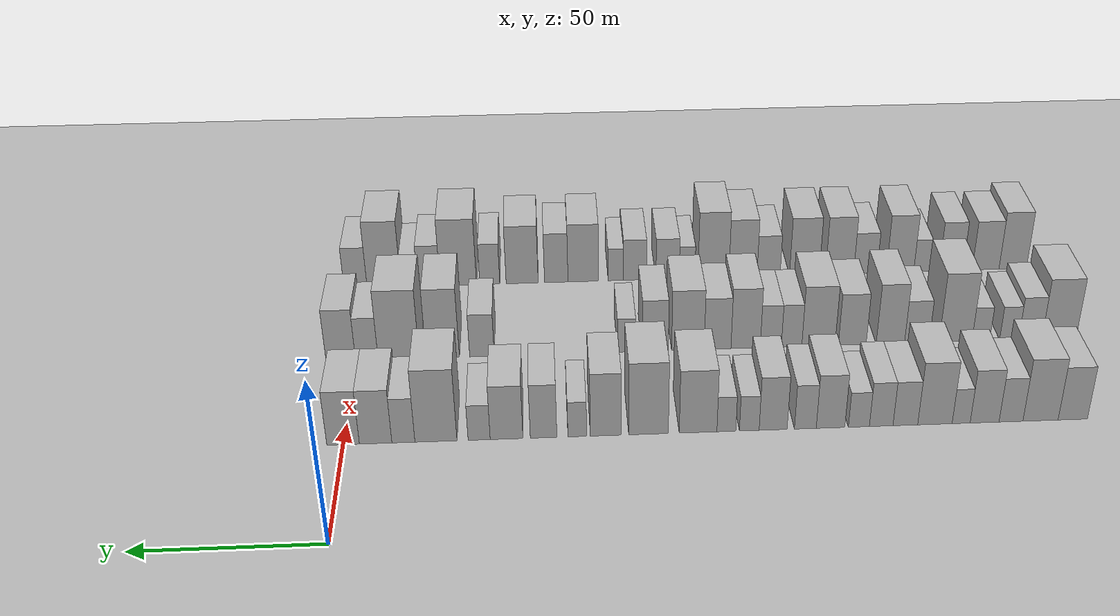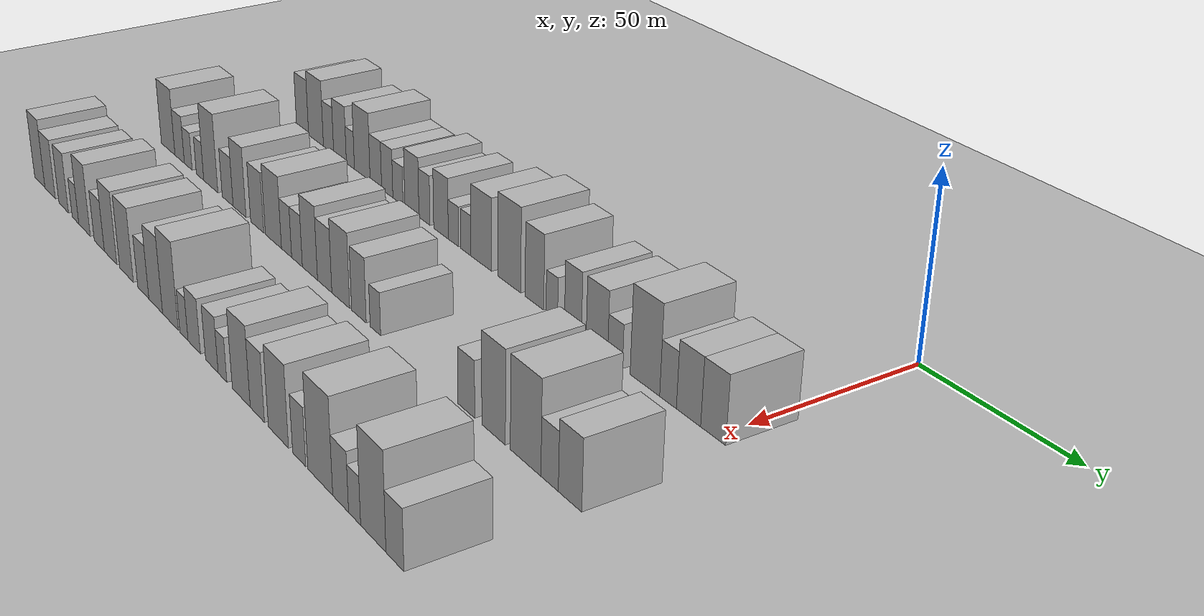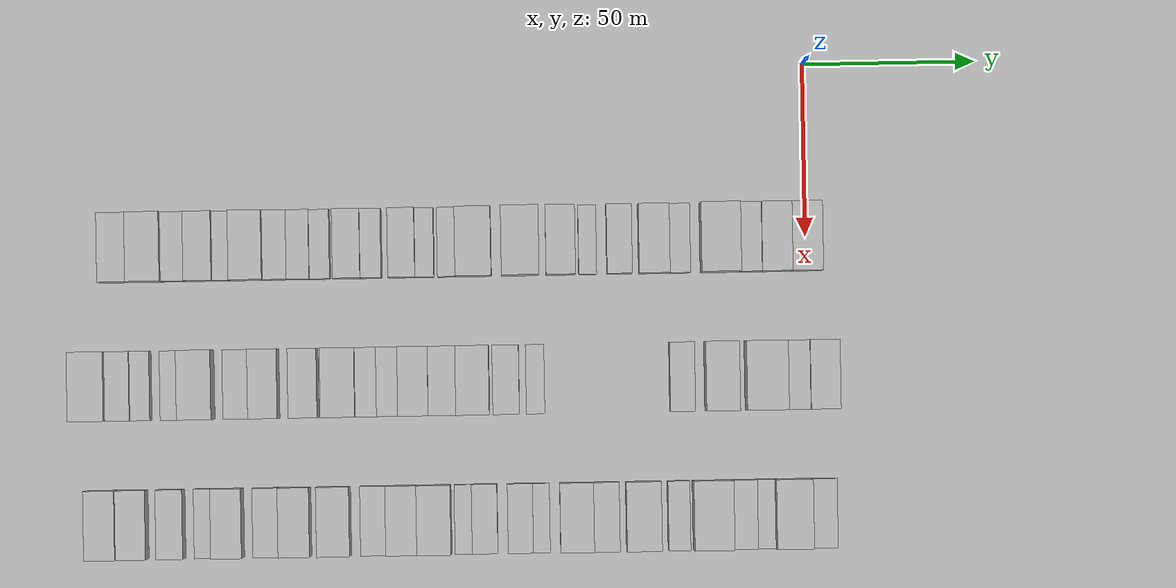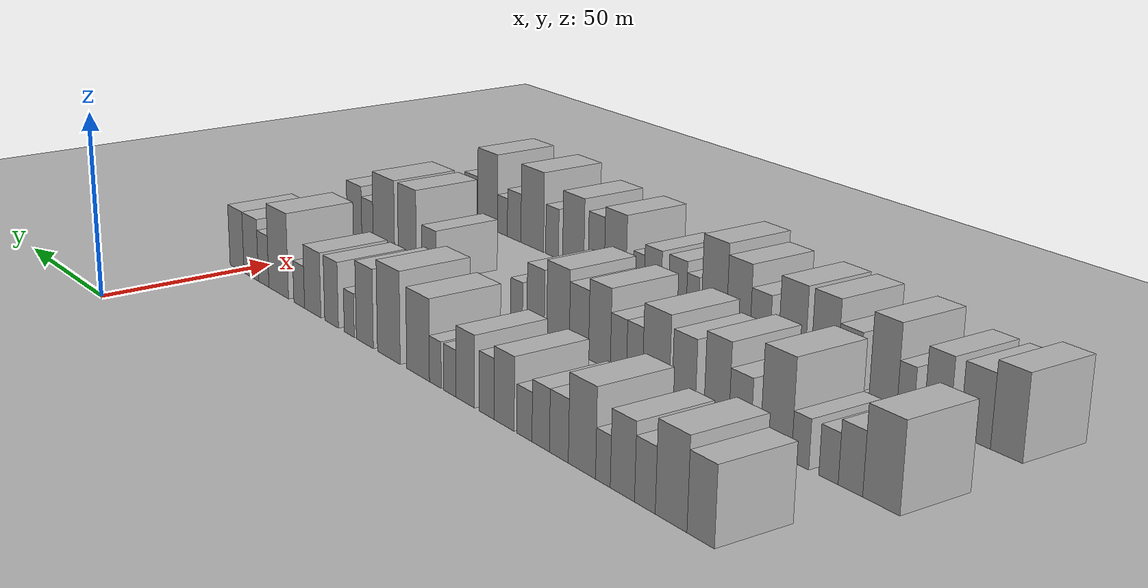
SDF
<sdf version="1.6">
 <world name="default">
  <include><name>ground_plane_1</name><uri>model://HANNAS_ground_plane</uri></include>
  <include>
   <name>ground_plane_2</name>
   <uri>model://HANNAS_ground_plane</uri>
   <pose>100 0 0  0 0 0</pose>
  </include>
  <model name="building_49">
   <static>1</static>
   <pose>50.0000 -200.3005 0 0.000000 0.000000 0.000000</pose>
   <link name="link">
    <pose>0 0 9.00 0 0 0</pose>
    <collision name="collision"><geometry><box><size>20.0000 8.2305 18.0000</size></box></geometry></collision>
    <visual name="visual">
     <cast_shadows>0</cast_shadows>
     <geometry><box><size>20.0000 8.2305 18.0000</size></box></geometry>
     <material>
      <script>
       <uri>model://HANNAS_wall/materials/scripts</uri>
       <uri>model://HANNAS_wall/materials/textures</uri>
       <name>vrc/HANNAS_wall</name>
      </script>
     </material>
    </visual>
   </link>
  </model>
  <model name="building_50">
   <static>1</static>
   <pose>50.0000 -191.2537 0 0.000000 0.000000 0.000000</pose>
   <link name="link">
    <pose>0 0 10.50 0 0 0</pose>
    <collision name="collision"><geometry><box><size>20.0000 9.8631 21.0000</size></box></geometry></collision>
    <visual name="visual">
     <cast_shadows>0</cast_shadows>
     <geometry><box><size>20.0000 9.8631 21.0000</size></box></geometry>
     <material>
      <script>
       <uri>model://HANNAS_wall/materials/scripts</uri>
       <uri>model://HANNAS_wall/materials/textures</uri>
       <name>vrc/HANNAS_wall</name>
      </script>
     </material>
    </visual>
   </link>
  </model>
  <model name="building_51">
   <static>1</static>
   <pose>50.0000 -182.9809 0 0.000000 0.000000 0.000000</pose>
   <link name="link">
    <pose>0 0 7.50 0 0 0</pose>
    <collision name="collision"><geometry><box><size>20.0000 6.6825 15.0000</size></box></geometry></collision>
    <visual name="visual">
     <cast_shadows>0</cast_shadows>
     <geometry><box><size>20.0000 6.6825 15.0000</size></box></geometry>
     <material>
      <script>
       <uri>model://HANNAS_wall/materials/scripts</uri>
       <uri>model://HANNAS_wall/materials/textures</uri>
       <name>vrc/HANNAS_wall</name>
      </script>
     </material>
    </visual>
   </link>
  </model>
  <model name="building_52">
   <static>1</static>
   <pose>50.0000 -175.6053 0 0.000000 0.000000 0.000000</pose>
   <link name="link">
    <pose>0 0 9.00 0 0 0</pose>
    <collision name="collision"><geometry><box><size>20.0000 8.0686 18.0000</size></box></geometry></collision>
    <visual name="visual">
     <cast_shadows>0</cast_shadows>
     <geometry><box><size>20.0000 8.0686 18.0000</size></box></geometry>
     <material>
      <script>
       <uri>model://HANNAS_wall/materials/scripts</uri>
       <uri>model://HANNAS_wall/materials/textures</uri>
       <name>vrc/HANNAS_wall</name>
      </script>
     </material>
    </visual>
   </link>
  </model>
  <model name="building_53">
   <static>1</static>
   <pose>50.0000 -169.0578 0 0.000000 0.000000 0.000000</pose>
   <link name="link">
    <pose>0 0 6.00 0 0 0</pose>
    <collision name="collision"><geometry><box><size>20.0000 5.0264 12.0000</size></box></geometry></collision>
    <visual name="visual">
     <cast_shadows>0</cast_shadows>
     <geometry><box><size>20.0000 5.0264 12.0000</size></box></geometry>
     <material>
      <script>
       <uri>model://HANNAS_wall/materials/scripts</uri>
       <uri>model://HANNAS_wall/materials/textures</uri>
       <name>vrc/HANNAS_wall</name>
      </script>
     </material>
    </visual>
   </link>
  </model>
  <model name="building_54">
   <static>1</static>
   <pose>50.0000 -161.7525 0 0.000000 0.000000 0.000000</pose>
   <link name="link">
    <pose>0 0 10.50 0 0 0</pose>
    <collision name="collision"><geometry><box><size>20.0000 9.5842 21.0000</size></box></geometry></collision>
    <visual name="visual">
     <cast_shadows>0</cast_shadows>
     <geometry><box><size>20.0000 9.5842 21.0000</size></box></geometry>
     <material>
      <script>
       <uri>model://HANNAS_wall/materials/scripts</uri>
       <uri>model://HANNAS_wall/materials/textures</uri>
       <name>vrc/HANNAS_wall</name>
      </script>
     </material>
    </visual>
   </link>
  </model>
  <model name="building_55">
   <static>1</static>
   <pose>50.0000 -153.5226 0 0.000000 0.000000 0.000000</pose>
   <link name="link">
    <pose>0 0 7.50 0 0 0</pose>
    <collision name="collision"><geometry><box><size>20.0000 6.8758 15.0000</size></box></geometry></collision>
    <visual name="visual">
     <cast_shadows>0</cast_shadows>
     <geometry><box><size>20.0000 6.8758 15.0000</size></box></geometry>
     <material>
      <script>
       <uri>model://HANNAS_wall/materials/scripts</uri>
       <uri>model://HANNAS_wall/materials/textures</uri>
       <name>vrc/HANNAS_wall</name>
      </script>
     </material>
    </visual>
   </link>
  </model>
  <model name="building_56">
   <static>1</static>
   <pose>50.0000 -146.8123 0 0.000000 0.000000 0.000000</pose>
   <link name="link">
    <pose>0 0 7.50 0 0 0</pose>
    <collision name="collision"><geometry><box><size>20.0000 6.5448 15.0000</size></box></geometry></collision>
    <visual name="visual">
     <cast_shadows>0</cast_shadows>
     <geometry><box><size>20.0000 6.5448 15.0000</size></box></geometry>
     <material>
      <script>
       <uri>model://HANNAS_wall/materials/scripts</uri>
       <uri>model://HANNAS_wall/materials/textures</uri>
       <name>vrc/HANNAS_wall</name>
      </script>
     </material>
    </visual>
   </link>
  </model>
  <model name="building_57">
   <static>1</static>
   <pose>50.0000 -140.6268 0 0.000000 0.000000 0.000000</pose>
   <link name="link">
    <pose>0 0 6.00 0 0 0</pose>
    <collision name="collision"><geometry><box><size>20.0000 5.8261 12.0000</size></box></geometry></collision>
    <visual name="visual">
     <cast_shadows>0</cast_shadows>
     <geometry><box><size>20.0000 5.8261 12.0000</size></box></geometry>
     <material>
      <script>
       <uri>model://HANNAS_wall/materials/scripts</uri>
       <uri>model://HANNAS_wall/materials/textures</uri>
       <name>vrc/HANNAS_wall</name>
      </script>
     </material>
    </visual>
   </link>
  </model>
  <model name="building_58">
   <static>1</static>
   <pose>50.0000 -132.7668 0 0.000000 0.000000 0.000000</pose>
   <link name="link">
    <pose>0 0 9.00 0 0 0</pose>
    <collision name="collision"><geometry><box><size>20.0000 7.8940 18.0000</size></box></geometry></collision>
    <visual name="visual">
     <cast_shadows>0</cast_shadows>
     <geometry><box><size>20.0000 7.8940 18.0000</size></box></geometry>
     <material>
      <script>
       <uri>model://HANNAS_wall/materials/scripts</uri>
       <uri>model://HANNAS_wall/materials/textures</uri>
       <name>vrc/HANNAS_wall</name>
      </script>
     </material>
    </visual>
   </link>
  </model>
  <model name="building_59">
   <static>1</static>
   <pose>50.0000 -125.8042 0 0.000000 0.000000 0.000000</pose>
   <link name="link">
    <pose>0 0 7.50 0 0 0</pose>
    <collision name="collision"><geometry><box><size>20.0000 6.0313 15.0000</size></box></geometry></collision>
    <visual name="visual">
     <cast_shadows>0</cast_shadows>
     <geometry><box><size>20.0000 6.0313 15.0000</size></box></geometry>
     <material>
      <script>
       <uri>model://HANNAS_wall/materials/scripts</uri>
       <uri>model://HANNAS_wall/materials/textures</uri>
       <name>vrc/HANNAS_wall</name>
      </script>
     </material>
    </visual>
   </link>
  </model>
  <model name="building_60">
   <static>1</static>
   <pose>50.0000 -116.9228 0 0.000000 0.000000 0.000000</pose>
   <link name="link">
    <pose>0 0 9.00 0 0 0</pose>
    <collision name="collision"><geometry><box><size>20.0000 7.7317 18.0000</size></box></geometry></collision>
    <visual name="visual">
     <cast_shadows>0</cast_shadows>
     <geometry><box><size>20.0000 7.7317 18.0000</size></box></geometry>
     <material>
      <script>
       <uri>model://HANNAS_wall/materials/scripts</uri>
       <uri>model://HANNAS_wall/materials/textures</uri>
       <name>vrc/HANNAS_wall</name>
      </script>
     </material>
    </visual>
   </link>
  </model>
  <model name="building_61">
   <static>1</static>
   <pose>50.0000 -110.3490 0 0.000000 0.000000 0.000000</pose>
   <link name="link">
    <pose>0 0 6.00 0 0 0</pose>
    <collision name="collision"><geometry><box><size>20.0000 5.4158 12.0000</size></box></geometry></collision>
    <visual name="visual">
     <cast_shadows>0</cast_shadows>
     <geometry><box><size>20.0000 5.4158 12.0000</size></box></geometry>
     <material>
      <script>
       <uri>model://HANNAS_wall/materials/scripts</uri>
       <uri>model://HANNAS_wall/materials/textures</uri>
       <name>vrc/HANNAS_wall</name>
      </script>
     </material>
    </visual>
   </link>
  </model>
  <model name="building_62">
   <static>1</static>
   <pose>50.0000 -104.0448 0 0.000000 0.000000 0.000000</pose>
   <link name="link">
    <pose>0 0 6.00 0 0 0</pose>
    <collision name="collision"><geometry><box><size>20.0000 5.1927 12.0000</size></box></geometry></collision>
    <visual name="visual">
     <cast_shadows>0</cast_shadows>
     <geometry><box><size>20.0000 5.1927 12.0000</size></box></geometry>
     <material>
      <script>
       <uri>model://HANNAS_wall/materials/scripts</uri>
       <uri>model://HANNAS_wall/materials/textures</uri>
       <name>vrc/HANNAS_wall</name>
      </script>
     </material>
    </visual>
   </link>
  </model>
  <model name="building_63">
   <static>1</static>
   <pose>50.0000 -96.2840 0 0.000000 0.000000 0.000000</pose>
   <link name="link">
    <pose>0 0 10.50 0 0 0</pose>
    <collision name="collision"><geometry><box><size>20.0000 10.3289 21.0000</size></box></geometry></collision>
    <visual name="visual">
     <cast_shadows>0</cast_shadows>
     <geometry><box><size>20.0000 10.3289 21.0000</size></box></geometry>
     <material>
      <script>
       <uri>model://HANNAS_wall/materials/scripts</uri>
       <uri>model://HANNAS_wall/materials/textures</uri>
       <name>vrc/HANNAS_wall</name>
      </script>
     </material>
    </visual>
   </link>
  </model>
  <model name="building_64">
   <static>1</static>
   <pose>50.0000 -82.7061 0 0.000000 0.000000 0.000000</pose>
   <link name="link">
    <pose>0 0 12.00 0 0 0</pose>
    <collision name="collision"><geometry><box><size>20.0000 10.8270 24.0000</size></box></geometry></collision>
    <visual name="visual">
     <cast_shadows>0</cast_shadows>
     <geometry><box><size>20.0000 10.8270 24.0000</size></box></geometry>
     <material>
      <script>
       <uri>model://HANNAS_wall/materials/scripts</uri>
       <uri>model://HANNAS_wall/materials/textures</uri>
       <name>vrc/HANNAS_wall</name>
      </script>
     </material>
    </visual>
   </link>
  </model>
  <model name="building_65">
   <static>1</static>
   <pose>50.0000 -71.0602 0 0.000000 0.000000 0.000000</pose>
   <link name="link">
    <pose>0 0 10.50 0 0 0</pose>
    <collision name="collision"><geometry><box><size>20.0000 8.4649 21.0000</size></box></geometry></collision>
    <visual name="visual">
     <cast_shadows>0</cast_shadows>
     <geometry><box><size>20.0000 8.4649 21.0000</size></box></geometry>
     <material>
      <script>
       <uri>model://HANNAS_wall/materials/scripts</uri>
       <uri>model://HANNAS_wall/materials/textures</uri>
       <name>vrc/HANNAS_wall</name>
      </script>
     </material>
    </visual>
   </link>
  </model>
  <model name="building_66">
   <static>1</static>
   <pose>50.0000 -63.2644 0 0.000000 0.000000 0.000000</pose>
   <link name="link">
    <pose>0 0 6.00 0 0 0</pose>
    <collision name="collision"><geometry><box><size>20.0000 5.1267 12.0000</size></box></geometry></collision>
    <visual name="visual">
     <cast_shadows>0</cast_shadows>
     <geometry><box><size>20.0000 5.1267 12.0000</size></box></geometry>
     <material>
      <script>
       <uri>model://HANNAS_wall/materials/scripts</uri>
       <uri>model://HANNAS_wall/materials/textures</uri>
       <name>vrc/HANNAS_wall</name>
      </script>
     </material>
    </visual>
   </link>
  </model>
  <model name="building_67">
   <static>1</static>
   <pose>50.0000 -54.0867 0 0.000000 0.000000 0.000000</pose>
   <link name="link">
    <pose>0 0 9.00 0 0 0</pose>
    <collision name="collision"><geometry><box><size>20.0000 7.2288 18.0000</size></box></geometry></collision>
    <visual name="visual">
     <cast_shadows>0</cast_shadows>
     <geometry><box><size>20.0000 7.2288 18.0000</size></box></geometry>
     <material>
      <script>
       <uri>model://HANNAS_wall/materials/scripts</uri>
       <uri>model://HANNAS_wall/materials/textures</uri>
       <name>vrc/HANNAS_wall</name>
      </script>
     </material>
    </visual>
   </link>
  </model>
  <model name="building_68">
   <static>1</static>
   <pose>50.0000 -44.0313 0 0.000000 0.000000 0.000000</pose>
   <link name="link">
    <pose>0 0 9.00 0 0 0</pose>
    <collision name="collision"><geometry><box><size>20.0000 8.8820 18.0000</size></box></geometry></collision>
    <visual name="visual">
     <cast_shadows>0</cast_shadows>
     <geometry><box><size>20.0000 8.8820 18.0000</size></box></geometry>
     <material>
      <script>
       <uri>model://HANNAS_wall/materials/scripts</uri>
       <uri>model://HANNAS_wall/materials/textures</uri>
       <name>vrc/HANNAS_wall</name>
      </script>
     </material>
    </visual>
   </link>
  </model>
  <model name="building_69">
   <static>1</static>
   <pose>50.0000 -36.5967 0 0.000000 0.000000 0.000000</pose>
   <link name="link">
    <pose>0 0 6.00 0 0 0</pose>
    <collision name="collision"><geometry><box><size>20.0000 5.9871 12.0000</size></box></geometry></collision>
    <visual name="visual">
     <cast_shadows>0</cast_shadows>
     <geometry><box><size>20.0000 5.9871 12.0000</size></box></geometry>
     <material>
      <script>
       <uri>model://HANNAS_wall/materials/scripts</uri>
       <uri>model://HANNAS_wall/materials/textures</uri>
       <name>vrc/HANNAS_wall</name>
      </script>
     </material>
    </visual>
   </link>
  </model>
  <model name="building_70">
   <static>1</static>
   <pose>50.0000 -24.9194 0 0.000000 0.000000 0.000000</pose>
   <link name="link">
    <pose>0 0 12.00 0 0 0</pose>
    <collision name="collision"><geometry><box><size>20.0000 11.3674 24.0000</size></box></geometry></collision>
    <visual name="visual">
     <cast_shadows>0</cast_shadows>
     <geometry><box><size>20.0000 11.3674 24.0000</size></box></geometry>
     <material>
      <script>
       <uri>model://HANNAS_wall/materials/scripts</uri>
       <uri>model://HANNAS_wall/materials/textures</uri>
       <name>vrc/HANNAS_wall</name>
      </script>
     </material>
    </visual>
   </link>
  </model>
  <model name="building_71">
   <static>1</static>
   <pose>50.0000 -16.1326 0 0.000000 0.000000 0.000000</pose>
   <link name="link">
    <pose>0 0 7.50 0 0 0</pose>
    <collision name="collision"><geometry><box><size>20.0000 6.2061 15.0000</size></box></geometry></collision>
    <visual name="visual">
     <cast_shadows>0</cast_shadows>
     <geometry><box><size>20.0000 6.2061 15.0000</size></box></geometry>
     <material>
      <script>
       <uri>model://HANNAS_wall/materials/scripts</uri>
       <uri>model://HANNAS_wall/materials/textures</uri>
       <name>vrc/HANNAS_wall</name>
      </script>
     </material>
    </visual>
   </link>
  </model>
  <model name="building_72">
   <static>1</static>
   <pose>50.0000 -8.6556 0 0.000000 0.000000 0.000000</pose>
   <link name="link">
    <pose>0 0 9.00 0 0 0</pose>
    <collision name="collision"><geometry><box><size>20.0000 8.7480 18.0000</size></box></geometry></collision>
    <visual name="visual">
     <cast_shadows>0</cast_shadows>
     <geometry><box><size>20.0000 8.7480 18.0000</size></box></geometry>
     <material>
      <script>
       <uri>model://HANNAS_wall/materials/scripts</uri>
       <uri>model://HANNAS_wall/materials/textures</uri>
       <name>vrc/HANNAS_wall</name>
      </script>
     </material>
    </visual>
   </link>
  </model>
  <model name="building_73">
   <static>1</static>
   <pose>50.0000 0.0947 0 0.000000 0.000000 0.000000</pose>
   <link name="link">
    <pose>0 0 9.00 0 0 0</pose>
    <collision name="collision"><geometry><box><size>20.0000 8.7524 18.0000</size></box></geometry></collision>
    <visual name="visual">
     <cast_shadows>0</cast_shadows>
     <geometry><box><size>20.0000 8.7524 18.0000</size></box></geometry>
     <material>
      <script>
       <uri>model://HANNAS_wall/materials/scripts</uri>
       <uri>model://HANNAS_wall/materials/textures</uri>
       <name>vrc/HANNAS_wall</name>
      </script>
     </material>
    </visual>
   </link>
  </model>
  <model name="building_189">
   <static>1</static>
   <pose>90.0000 -208.1577 0 0.000000 0.000000 0.000000</pose>
   <link name="link">
    <pose>0 0 10.50 0 0 0</pose>
    <collision name="collision"><geometry><box><size>20.0000 10.3792 21.0000</size></box></geometry></collision>
    <visual name="visual">
     <cast_shadows>0</cast_shadows>
     <geometry><box><size>20.0000 10.3792 21.0000</size></box></geometry>
     <material>
      <script>
       <uri>model://HANNAS_wall/materials/scripts</uri>
       <uri>model://HANNAS_wall/materials/textures</uri>
       <name>vrc/HANNAS_wall</name>
      </script>
     </material>
    </visual>
   </link>
  </model>
  <model name="building_190">
   <static>1</static>
   <pose>90.0000 -199.4439 0 0.000000 0.000000 0.000000</pose>
   <link name="link">
    <pose>0 0 7.50 0 0 0</pose>
    <collision name="collision"><geometry><box><size>20.0000 7.0485 15.0000</size></box></geometry></collision>
    <visual name="visual">
     <cast_shadows>0</cast_shadows>
     <geometry><box><size>20.0000 7.0485 15.0000</size></box></geometry>
     <material>
      <script>
       <uri>model://HANNAS_wall/materials/scripts</uri>
       <uri>model://HANNAS_wall/materials/textures</uri>
       <name>vrc/HANNAS_wall</name>
      </script>
     </material>
    </visual>
   </link>
  </model>
  <model name="building_191">
   <static>1</static>
   <pose>90.0000 -193.0542 0 0.000000 0.000000 0.000000</pose>
   <link name="link">
    <pose>0 0 6.00 0 0 0</pose>
    <collision name="collision"><geometry><box><size>20.0000 5.7309 12.0000</size></box></geometry></collision>
    <visual name="visual">
     <cast_shadows>0</cast_shadows>
     <geometry><box><size>20.0000 5.7309 12.0000</size></box></geometry>
     <material>
      <script>
       <uri>model://HANNAS_wall/materials/scripts</uri>
       <uri>model://HANNAS_wall/materials/textures</uri>
       <name>vrc/HANNAS_wall</name>
      </script>
     </material>
    </visual>
   </link>
  </model>
  <model name="building_192">
   <static>1</static>
   <pose>90.0000 -184.5209 0 0.000000 0.000000 0.000000</pose>
   <link name="link">
    <pose>0 0 6.00 0 0 0</pose>
    <collision name="collision"><geometry><box><size>20.0000 5.3356 12.0000</size></box></geometry></collision>
    <visual name="visual">
     <cast_shadows>0</cast_shadows>
     <geometry><box><size>20.0000 5.3356 12.0000</size></box></geometry>
     <material>
      <script>
       <uri>model://HANNAS_wall/materials/scripts</uri>
       <uri>model://HANNAS_wall/materials/textures</uri>
       <name>vrc/HANNAS_wall</name>
      </script>
     </material>
    </visual>
   </link>
  </model>
  <model name="building_193">
   <static>1</static>
   <pose>90.0000 -176.9055 0 0.000000 0.000000 0.000000</pose>
   <link name="link">
    <pose>0 0 12.00 0 0 0</pose>
    <collision name="collision"><geometry><box><size>20.0000 9.8951 24.0000</size></box></geometry></collision>
    <visual name="visual">
     <cast_shadows>0</cast_shadows>
     <geometry><box><size>20.0000 9.8951 24.0000</size></box></geometry>
     <material>
      <script>
       <uri>model://HANNAS_wall/materials/scripts</uri>
       <uri>model://HANNAS_wall/materials/textures</uri>
       <name>vrc/HANNAS_wall</name>
      </script>
     </material>
    </visual>
   </link>
  </model>
  <model name="building_194">
   <static>1</static>
   <pose>90.0000 -165.2714 0 0.000000 0.000000 0.000000</pose>
   <link name="link">
    <pose>0 0 7.50 0 0 0</pose>
    <collision name="collision"><geometry><box><size>20.0000 7.3732 15.0000</size></box></geometry></collision>
    <visual name="visual">
     <cast_shadows>0</cast_shadows>
     <geometry><box><size>20.0000 7.3732 15.0000</size></box></geometry>
     <material>
      <script>
       <uri>model://HANNAS_wall/materials/scripts</uri>
       <uri>model://HANNAS_wall/materials/textures</uri>
       <name>vrc/HANNAS_wall</name>
      </script>
     </material>
    </visual>
   </link>
  </model>
  <model name="building_195">
   <static>1</static>
   <pose>90.0000 -157.3476 0 0.000000 0.000000 0.000000</pose>
   <link name="link">
    <pose>0 0 10.50 0 0 0</pose>
    <collision name="collision"><geometry><box><size>20.0000 8.4745 21.0000</size></box></geometry></collision>
    <visual name="visual">
     <cast_shadows>0</cast_shadows>
     <geometry><box><size>20.0000 8.4745 21.0000</size></box></geometry>
     <material>
      <script>
       <uri>model://HANNAS_wall/materials/scripts</uri>
       <uri>model://HANNAS_wall/materials/textures</uri>
       <name>vrc/HANNAS_wall</name>
      </script>
     </material>
    </visual>
   </link>
  </model>
  <model name="building_196">
   <static>1</static>
   <pose>90.0000 -145.9497 0 0.000000 0.000000 0.000000</pose>
   <link name="link">
    <pose>0 0 9.00 0 0 0</pose>
    <collision name="collision"><geometry><box><size>20.0000 8.3211 18.0000</size></box></geometry></collision>
    <visual name="visual">
     <cast_shadows>0</cast_shadows>
     <geometry><box><size>20.0000 8.3211 18.0000</size></box></geometry>
     <material>
      <script>
       <uri>model://HANNAS_wall/materials/scripts</uri>
       <uri>model://HANNAS_wall/materials/textures</uri>
       <name>vrc/HANNAS_wall</name>
      </script>
     </material>
    </visual>
   </link>
  </model>
  <model name="building_197">
   <static>1</static>
   <pose>90.0000 -135.8402 0 0.000000 0.000000 0.000000</pose>
   <link name="link">
    <pose>0 0 10.50 0 0 0</pose>
    <collision name="collision"><geometry><box><size>20.0000 9.8979 21.0000</size></box></geometry></collision>
    <visual name="visual">
     <cast_shadows>0</cast_shadows>
     <geometry><box><size>20.0000 9.8979 21.0000</size></box></geometry>
     <material>
      <script>
       <uri>model://HANNAS_wall/materials/scripts</uri>
       <uri>model://HANNAS_wall/materials/textures</uri>
       <name>vrc/HANNAS_wall</name>
      </script>
     </material>
    </visual>
   </link>
  </model>
  <model name="building_198">
   <static>1</static>
   <pose>90.0000 -127.8401 0 0.000000 0.000000 0.000000</pose>
   <link name="link">
    <pose>0 0 7.50 0 0 0</pose>
    <collision name="collision"><geometry><box><size>20.0000 6.1024 15.0000</size></box></geometry></collision>
    <visual name="visual">
     <cast_shadows>0</cast_shadows>
     <geometry><box><size>20.0000 6.1024 15.0000</size></box></geometry>
     <material>
      <script>
       <uri>model://HANNAS_wall/materials/scripts</uri>
       <uri>model://HANNAS_wall/materials/textures</uri>
       <name>vrc/HANNAS_wall</name>
      </script>
     </material>
    </visual>
   </link>
  </model>
  <model name="building_199">
   <static>1</static>
   <pose>90.0000 -121.6535 0 0.000000 0.000000 0.000000</pose>
   <link name="link">
    <pose>0 0 7.50 0 0 0</pose>
    <collision name="collision"><geometry><box><size>20.0000 6.2709 15.0000</size></box></geometry></collision>
    <visual name="visual">
     <cast_shadows>0</cast_shadows>
     <geometry><box><size>20.0000 6.2709 15.0000</size></box></geometry>
     <material>
      <script>
       <uri>model://HANNAS_wall/materials/scripts</uri>
       <uri>model://HANNAS_wall/materials/textures</uri>
       <name>vrc/HANNAS_wall</name>
      </script>
     </material>
    </visual>
   </link>
  </model>
  <model name="building_200">
   <static>1</static>
   <pose>90.0000 -114.1725 0 0.000000 0.000000 0.000000</pose>
   <link name="link">
    <pose>0 0 10.50 0 0 0</pose>
    <collision name="collision"><geometry><box><size>20.0000 8.6910 21.0000</size></box></geometry></collision>
    <visual name="visual">
     <cast_shadows>0</cast_shadows>
     <geometry><box><size>20.0000 8.6910 21.0000</size></box></geometry>
     <material>
      <script>
       <uri>model://HANNAS_wall/materials/scripts</uri>
       <uri>model://HANNAS_wall/materials/textures</uri>
       <name>vrc/HANNAS_wall</name>
      </script>
     </material>
    </visual>
   </link>
  </model>
  <model name="building_201">
   <static>1</static>
   <pose>90.0000 -105.8545 0 0.000000 0.000000 0.000000</pose>
   <link name="link">
    <pose>0 0 9.00 0 0 0</pose>
    <collision name="collision"><geometry><box><size>20.0000 7.9448 18.0000</size></box></geometry></collision>
    <visual name="visual">
     <cast_shadows>0</cast_shadows>
     <geometry><box><size>20.0000 7.9448 18.0000</size></box></geometry>
     <material>
      <script>
       <uri>model://HANNAS_wall/materials/scripts</uri>
       <uri>model://HANNAS_wall/materials/textures</uri>
       <name>vrc/HANNAS_wall</name>
      </script>
     </material>
    </visual>
   </link>
  </model>
  <model name="building_202">
   <static>1</static>
   <pose>90.0000 -97.0730 0 0.000000 0.000000 0.000000</pose>
   <link name="link">
    <pose>0 0 10.50 0 0 0</pose>
    <collision name="collision"><geometry><box><size>20.0000 9.6182 21.0000</size></box></geometry></collision>
    <visual name="visual">
     <cast_shadows>0</cast_shadows>
     <geometry><box><size>20.0000 9.6182 21.0000</size></box></geometry>
     <material>
      <script>
       <uri>model://HANNAS_wall/materials/scripts</uri>
       <uri>model://HANNAS_wall/materials/textures</uri>
       <name>vrc/HANNAS_wall</name>
      </script>
     </material>
    </visual>
   </link>
  </model>
  <model name="building_203">
   <static>1</static>
   <pose>90.0000 -87.4512 0 0.000000 0.000000 0.000000</pose>
   <link name="link">
    <pose>0 0 9.00 0 0 0</pose>
    <collision name="collision"><geometry><box><size>20.0000 7.6255 18.0000</size></box></geometry></collision>
    <visual name="visual">
     <cast_shadows>0</cast_shadows>
     <geometry><box><size>20.0000 7.6255 18.0000</size></box></geometry>
     <material>
      <script>
       <uri>model://HANNAS_wall/materials/scripts</uri>
       <uri>model://HANNAS_wall/materials/textures</uri>
       <name>vrc/HANNAS_wall</name>
      </script>
     </material>
    </visual>
   </link>
  </model>
  <model name="building_204">
   <static>1</static>
   <pose>90.0000 -78.9782 0 0.000000 0.000000 0.000000</pose>
   <link name="link">
    <pose>0 0 6.00 0 0 0</pose>
    <collision name="collision"><geometry><box><size>20.0000 5.3205 12.0000</size></box></geometry></collision>
    <visual name="visual">
     <cast_shadows>0</cast_shadows>
     <geometry><box><size>20.0000 5.3205 12.0000</size></box></geometry>
     <material>
      <script>
       <uri>model://HANNAS_wall/materials/scripts</uri>
       <uri>model://HANNAS_wall/materials/textures</uri>
       <name>vrc/HANNAS_wall</name>
      </script>
     </material>
    </visual>
   </link>
  </model>
  <model name="building_205">
   <static>1</static>
   <pose>90.0000 -36.5297 0 0.000000 0.000000 0.000000</pose>
   <link name="link">
    <pose>0 0 7.50 0 0 0</pose>
    <collision name="collision"><geometry><box><size>20.0000 7.1921 15.0000</size></box></geometry></collision>
    <visual name="visual">
     <cast_shadows>0</cast_shadows>
     <geometry><box><size>20.0000 7.1921 15.0000</size></box></geometry>
     <material>
      <script>
       <uri>model://HANNAS_wall/materials/scripts</uri>
       <uri>model://HANNAS_wall/materials/textures</uri>
       <name>vrc/HANNAS_wall</name>
      </script>
     </material>
    </visual>
   </link>
  </model>
  <model name="building_206">
   <static>1</static>
   <pose>90.0000 -25.0879 0 0.000000 0.000000 0.000000</pose>
   <link name="link">
    <pose>0 0 12.00 0 0 0</pose>
    <collision name="collision"><geometry><box><size>20.0000 9.6915 24.0000</size></box></geometry></collision>
    <visual name="visual">
     <cast_shadows>0</cast_shadows>
     <geometry><box><size>20.0000 9.6915 24.0000</size></box></geometry>
     <material>
      <script>
       <uri>model://HANNAS_wall/materials/scripts</uri>
       <uri>model://HANNAS_wall/materials/textures</uri>
       <name>vrc/HANNAS_wall</name>
      </script>
     </material>
    </visual>
   </link>
  </model>
  <model name="building_207">
   <static>1</static>
   <pose>90.0000 -12.2641 0 0.000000 0.000000 0.000000</pose>
   <link name="link">
    <pose>0 0 12.00 0 0 0</pose>
    <collision name="collision"><geometry><box><size>20.0000 11.9561 24.0000</size></box></geometry></collision>
    <visual name="visual">
     <cast_shadows>0</cast_shadows>
     <geometry><box><size>20.0000 11.9561 24.0000</size></box></geometry>
     <material>
      <script>
       <uri>model://HANNAS_wall/materials/scripts</uri>
       <uri>model://HANNAS_wall/materials/textures</uri>
       <name>vrc/HANNAS_wall</name>
      </script>
     </material>
    </visual>
   </link>
  </model>
  <model name="building_208">
   <static>1</static>
   <pose>90.0000 -3.0077 0 0.000000 0.000000 0.000000</pose>
   <link name="link">
    <pose>0 0 7.50 0 0 0</pose>
    <collision name="collision"><geometry><box><size>20.0000 6.5567 15.0000</size></box></geometry></collision>
    <visual name="visual">
     <cast_shadows>0</cast_shadows>
     <geometry><box><size>20.0000 6.5567 15.0000</size></box></geometry>
     <material>
      <script>
       <uri>model://HANNAS_wall/materials/scripts</uri>
       <uri>model://HANNAS_wall/materials/textures</uri>
       <name>vrc/HANNAS_wall</name>
      </script>
     </material>
    </visual>
   </link>
  </model>
  <model name="building_209">
   <static>1</static>
   <pose>90.0000 4.5453 0 0.000000 0.000000 0.000000</pose>
   <link name="link">
    <pose>0 0 9.00 0 0 0</pose>
    <collision name="collision"><geometry><box><size>20.0000 8.5493 18.0000</size></box></geometry></collision>
    <visual name="visual">
     <cast_shadows>0</cast_shadows>
     <geometry><box><size>20.0000 8.5493 18.0000</size></box></geometry>
     <material>
      <script>
       <uri>model://HANNAS_wall/materials/scripts</uri>
       <uri>model://HANNAS_wall/materials/textures</uri>
       <name>vrc/HANNAS_wall</name>
      </script>
     </material>
    </visual>
   </link>
  </model>
  <model name="building_326">
   <static>1</static>
   <pose>130.0000 -204.8175 0 0.000000 0.000000 0.000000</pose>
   <link name="link">
    <pose>0 0 10.50 0 0 0</pose>
    <collision name="collision"><geometry><box><size>20.0000 8.8917 21.0000</size></box></geometry></collision>
    <visual name="visual">
     <cast_shadows>0</cast_shadows>
     <geometry><box><size>20.0000 8.8917 21.0000</size></box></geometry>
     <material>
      <script>
       <uri>model://HANNAS_wall/materials/scripts</uri>
       <uri>model://HANNAS_wall/materials/textures</uri>
       <name>vrc/HANNAS_wall</name>
      </script>
     </material>
    </visual>
   </link>
  </model>
  <model name="building_327">
   <static>1</static>
   <pose>130.0000 -196.0402 0 0.000000 0.000000 0.000000</pose>
   <link name="link">
    <pose>0 0 9.00 0 0 0</pose>
    <collision name="collision"><geometry><box><size>20.0000 8.6630 18.0000</size></box></geometry></collision>
    <visual name="visual">
     <cast_shadows>0</cast_shadows>
     <geometry><box><size>20.0000 8.6630 18.0000</size></box></geometry>
     <material>
      <script>
       <uri>model://HANNAS_wall/materials/scripts</uri>
       <uri>model://HANNAS_wall/materials/textures</uri>
       <name>vrc/HANNAS_wall</name>
      </script>
     </material>
    </visual>
   </link>
  </model>
  <model name="building_328">
   <static>1</static>
   <pose>130.0000 -184.8682 0 0.000000 0.000000 0.000000</pose>
   <link name="link">
    <pose>0 0 9.00 0 0 0</pose>
    <collision name="collision"><geometry><box><size>20.0000 7.6809 18.0000</size></box></geometry></collision>
    <visual name="visual">
     <cast_shadows>0</cast_shadows>
     <geometry><box><size>20.0000 7.6809 18.0000</size></box></geometry>
     <material>
      <script>
       <uri>model://HANNAS_wall/materials/scripts</uri>
       <uri>model://HANNAS_wall/materials/textures</uri>
       <name>vrc/HANNAS_wall</name>
      </script>
     </material>
    </visual>
   </link>
  </model>
  <model name="building_329">
   <static>1</static>
   <pose>130.0000 -175.4334 0 0.000000 0.000000 0.000000</pose>
   <link name="link">
    <pose>0 0 6.00 0 0 0</pose>
    <collision name="collision"><geometry><box><size>20.0000 5.1887 12.0000</size></box></geometry></collision>
    <visual name="visual">
     <cast_shadows>0</cast_shadows>
     <geometry><box><size>20.0000 5.1887 12.0000</size></box></geometry>
     <material>
      <script>
       <uri>model://HANNAS_wall/materials/scripts</uri>
       <uri>model://HANNAS_wall/materials/textures</uri>
       <name>vrc/HANNAS_wall</name>
      </script>
     </material>
    </visual>
   </link>
  </model>
  <model name="building_330">
   <static>1</static>
   <pose>130.0000 -168.4266 0 0.000000 0.000000 0.000000</pose>
   <link name="link">
    <pose>0 0 10.50 0 0 0</pose>
    <collision name="collision"><geometry><box><size>20.0000 8.8248 21.0000</size></box></geometry></collision>
    <visual name="visual">
     <cast_shadows>0</cast_shadows>
     <geometry><box><size>20.0000 8.8248 21.0000</size></box></geometry>
     <material>
      <script>
       <uri>model://HANNAS_wall/materials/scripts</uri>
       <uri>model://HANNAS_wall/materials/textures</uri>
       <name>vrc/HANNAS_wall</name>
      </script>
     </material>
    </visual>
   </link>
  </model>
  <model name="building_331">
   <static>1</static>
   <pose>130.0000 -157.2724 0 0.000000 0.000000 0.000000</pose>
   <link name="link">
    <pose>0 0 7.50 0 0 0</pose>
    <collision name="collision"><geometry><box><size>20.0000 7.4836 15.0000</size></box></geometry></collision>
    <visual name="visual">
     <cast_shadows>0</cast_shadows>
     <geometry><box><size>20.0000 7.4836 15.0000</size></box></geometry>
     <material>
      <script>
       <uri>model://HANNAS_wall/materials/scripts</uri>
       <uri>model://HANNAS_wall/materials/textures</uri>
       <name>vrc/HANNAS_wall</name>
      </script>
     </material>
    </visual>
   </link>
  </model>
  <model name="building_332">
   <static>1</static>
   <pose>130.0000 -149.0197 0 0.000000 0.000000 0.000000</pose>
   <link name="link">
    <pose>0 0 10.50 0 0 0</pose>
    <collision name="collision"><geometry><box><size>20.0000 9.0217 21.0000</size></box></geometry></collision>
    <visual name="visual">
     <cast_shadows>0</cast_shadows>
     <geometry><box><size>20.0000 9.0217 21.0000</size></box></geometry>
     <material>
      <script>
       <uri>model://HANNAS_wall/materials/scripts</uri>
       <uri>model://HANNAS_wall/materials/textures</uri>
       <name>vrc/HANNAS_wall</name>
      </script>
     </material>
    </visual>
   </link>
  </model>
  <model name="building_333">
   <static>1</static>
   <pose>130.0000 -137.7573 0 0.000000 0.000000 0.000000</pose>
   <link name="link">
    <pose>0 0 10.50 0 0 0</pose>
    <collision name="collision"><geometry><box><size>20.0000 9.5032 21.0000</size></box></geometry></collision>
    <visual name="visual">
     <cast_shadows>0</cast_shadows>
     <geometry><box><size>20.0000 9.5032 21.0000</size></box></geometry>
     <material>
      <script>
       <uri>model://HANNAS_wall/materials/scripts</uri>
       <uri>model://HANNAS_wall/materials/textures</uri>
       <name>vrc/HANNAS_wall</name>
      </script>
     </material>
    </visual>
   </link>
  </model>
  <model name="building_334">
   <static>1</static>
   <pose>130.0000 -126.3179 0 0.000000 0.000000 0.000000</pose>
   <link name="link">
    <pose>0 0 7.50 0 0 0</pose>
    <collision name="collision"><geometry><box><size>20.0000 7.3756 15.0000</size></box></geometry></collision>
    <visual name="visual">
     <cast_shadows>0</cast_shadows>
     <geometry><box><size>20.0000 7.3756 15.0000</size></box></geometry>
     <material>
      <script>
       <uri>model://HANNAS_wall/materials/scripts</uri>
       <uri>model://HANNAS_wall/materials/textures</uri>
       <name>vrc/HANNAS_wall</name>
      </script>
     </material>
    </visual>
   </link>
  </model>
  <model name="building_335">
   <static>1</static>
   <pose>130.0000 -118.1557 0 0.000000 0.000000 0.000000</pose>
   <link name="link">
    <pose>0 0 10.50 0 0 0</pose>
    <collision name="collision"><geometry><box><size>20.0000 8.9488 21.0000</size></box></geometry></collision>
    <visual name="visual">
     <cast_shadows>0</cast_shadows>
     <geometry><box><size>20.0000 8.9488 21.0000</size></box></geometry>
     <material>
      <script>
       <uri>model://HANNAS_wall/materials/scripts</uri>
       <uri>model://HANNAS_wall/materials/textures</uri>
       <name>vrc/HANNAS_wall</name>
      </script>
     </material>
    </visual>
   </link>
  </model>
  <model name="building_336">
   <static>1</static>
   <pose>130.0000 -108.7756 0 0.000000 0.000000 0.000000</pose>
   <link name="link">
    <pose>0 0 12.00 0 0 0</pose>
    <collision name="collision"><geometry><box><size>20.0000 9.8114 24.0000</size></box></geometry></collision>
    <visual name="visual">
     <cast_shadows>0</cast_shadows>
     <geometry><box><size>20.0000 9.8114 24.0000</size></box></geometry>
     <material>
      <script>
       <uri>model://HANNAS_wall/materials/scripts</uri>
       <uri>model://HANNAS_wall/materials/textures</uri>
       <name>vrc/HANNAS_wall</name>
      </script>
     </material>
    </visual>
   </link>
  </model>
  <model name="building_337">
   <static>1</static>
   <pose>130.0000 -100.3809 0 0.000000 0.000000 0.000000</pose>
   <link name="link">
    <pose>0 0 6.00 0 0 0</pose>
    <collision name="collision"><geometry><box><size>20.0000 4.9780 12.0000</size></box></geometry></collision>
    <visual name="visual">
     <cast_shadows>0</cast_shadows>
     <geometry><box><size>20.0000 4.9780 12.0000</size></box></geometry>
     <material>
      <script>
       <uri>model://HANNAS_wall/materials/scripts</uri>
       <uri>model://HANNAS_wall/materials/textures</uri>
       <name>vrc/HANNAS_wall</name>
      </script>
     </material>
    </visual>
   </link>
  </model>
  <model name="building_338">
   <static>1</static>
   <pose>130.0000 -94.2089 0 0.000000 0.000000 0.000000</pose>
   <link name="link">
    <pose>0 0 7.50 0 0 0</pose>
    <collision name="collision"><geometry><box><size>20.0000 7.3661 15.0000</size></box></geometry></collision>
    <visual name="visual">
     <cast_shadows>0</cast_shadows>
     <geometry><box><size>20.0000 7.3661 15.0000</size></box></geometry>
     <material>
      <script>
       <uri>model://HANNAS_wall/materials/scripts</uri>
       <uri>model://HANNAS_wall/materials/textures</uri>
       <name>vrc/HANNAS_wall</name>
      </script>
     </material>
    </visual>
   </link>
  </model>
  <model name="building_339">
   <static>1</static>
   <pose>130.0000 -83.9035 0 0.000000 0.000000 0.000000</pose>
   <link name="link">
    <pose>0 0 7.50 0 0 0</pose>
    <collision name="collision"><geometry><box><size>20.0000 7.2446 15.0000</size></box></geometry></collision>
    <visual name="visual">
     <cast_shadows>0</cast_shadows>
     <geometry><box><size>20.0000 7.2446 15.0000</size></box></geometry>
     <material>
      <script>
       <uri>model://HANNAS_wall/materials/scripts</uri>
       <uri>model://HANNAS_wall/materials/textures</uri>
       <name>vrc/HANNAS_wall</name>
      </script>
     </material>
    </visual>
   </link>
  </model>
  <model name="building_340">
   <static>1</static>
   <pose>130.0000 -77.8463 0 0.000000 0.000000 0.000000</pose>
   <link name="link">
    <pose>0 0 6.00 0 0 0</pose>
    <collision name="collision"><geometry><box><size>20.0000 4.8697 12.0000</size></box></geometry></collision>
    <visual name="visual">
     <cast_shadows>0</cast_shadows>
     <geometry><box><size>20.0000 4.8697 12.0000</size></box></geometry>
     <material>
      <script>
       <uri>model://HANNAS_wall/materials/scripts</uri>
       <uri>model://HANNAS_wall/materials/textures</uri>
       <name>vrc/HANNAS_wall</name>
      </script>
     </material>
    </visual>
   </link>
  </model>
  <model name="building_341">
   <static>1</static>
   <pose>130.0000 -67.5701 0 0.000000 0.000000 0.000000</pose>
   <link name="link">
    <pose>0 0 10.50 0 0 0</pose>
    <collision name="collision"><geometry><box><size>20.0000 9.6828 21.0000</size></box></geometry></collision>
    <visual name="visual">
     <cast_shadows>0</cast_shadows>
     <geometry><box><size>20.0000 9.6828 21.0000</size></box></geometry>
     <material>
      <script>
       <uri>model://HANNAS_wall/materials/scripts</uri>
       <uri>model://HANNAS_wall/materials/textures</uri>
       <name>vrc/HANNAS_wall</name>
      </script>
     </material>
    </visual>
   </link>
  </model>
  <model name="building_342">
   <static>1</static>
   <pose>130.0000 -59.0303 0 0.000000 0.000000 0.000000</pose>
   <link name="link">
    <pose>0 0 9.00 0 0 0</pose>
    <collision name="collision"><geometry><box><size>20.0000 7.3967 18.0000</size></box></geometry></collision>
    <visual name="visual">
     <cast_shadows>0</cast_shadows>
     <geometry><box><size>20.0000 7.3967 18.0000</size></box></geometry>
     <material>
      <script>
       <uri>model://HANNAS_wall/materials/scripts</uri>
       <uri>model://HANNAS_wall/materials/textures</uri>
       <name>vrc/HANNAS_wall</name>
      </script>
     </material>
    </visual>
   </link>
  </model>
  <model name="building_343">
   <static>1</static>
   <pose>130.0000 -48.3020 0 0.000000 0.000000 0.000000</pose>
   <link name="link">
    <pose>0 0 10.50 0 0 0</pose>
    <collision name="collision"><geometry><box><size>20.0000 10.0600 21.0000</size></box></geometry></collision>
    <visual name="visual">
     <cast_shadows>0</cast_shadows>
     <geometry><box><size>20.0000 10.0600 21.0000</size></box></geometry>
     <material>
      <script>
       <uri>model://HANNAS_wall/materials/scripts</uri>
       <uri>model://HANNAS_wall/materials/textures</uri>
       <name>vrc/HANNAS_wall</name>
      </script>
     </material>
    </visual>
   </link>
  </model>
  <model name="building_344">
   <static>1</static>
   <pose>130.0000 -38.1283 0 0.000000 0.000000 0.000000</pose>
   <link name="link">
    <pose>0 0 7.50 0 0 0</pose>
    <collision name="collision"><geometry><box><size>20.0000 6.2874 15.0000</size></box></geometry></collision>
    <visual name="visual">
     <cast_shadows>0</cast_shadows>
     <geometry><box><size>20.0000 6.2874 15.0000</size></box></geometry>
     <material>
      <script>
       <uri>model://HANNAS_wall/materials/scripts</uri>
       <uri>model://HANNAS_wall/materials/textures</uri>
       <name>vrc/HANNAS_wall</name>
      </script>
     </material>
    </visual>
   </link>
  </model>
  <model name="building_345">
   <static>1</static>
   <pose>130.0000 -28.2711 0 0.000000 0.000000 0.000000</pose>
   <link name="link">
    <pose>0 0 12.00 0 0 0</pose>
    <collision name="collision"><geometry><box><size>20.0000 11.4269 24.0000</size></box></geometry></collision>
    <visual name="visual">
     <cast_shadows>0</cast_shadows>
     <geometry><box><size>20.0000 11.4269 24.0000</size></box></geometry>
     <material>
      <script>
       <uri>model://HANNAS_wall/materials/scripts</uri>
       <uri>model://HANNAS_wall/materials/textures</uri>
       <name>vrc/HANNAS_wall</name>
      </script>
     </material>
    </visual>
   </link>
  </model>
  <model name="building_346">
   <static>1</static>
   <pose>130.0000 -19.0503 0 0.000000 0.000000 0.000000</pose>
   <link name="link">
    <pose>0 0 7.50 0 0 0</pose>
    <collision name="collision"><geometry><box><size>20.0000 7.0149 15.0000</size></box></geometry></collision>
    <visual name="visual">
     <cast_shadows>0</cast_shadows>
     <geometry><box><size>20.0000 7.0149 15.0000</size></box></geometry>
     <material>
      <script>
       <uri>model://HANNAS_wall/materials/scripts</uri>
       <uri>model://HANNAS_wall/materials/textures</uri>
       <name>vrc/HANNAS_wall</name>
      </script>
     </material>
    </visual>
   </link>
  </model>
  <model name="building_347">
   <static>1</static>
   <pose>130.0000 -12.9482 0 0.000000 0.000000 0.000000</pose>
   <link name="link">
    <pose>0 0 6.00 0 0 0</pose>
    <collision name="collision"><geometry><box><size>20.0000 5.1892 12.0000</size></box></geometry></collision>
    <visual name="visual">
     <cast_shadows>0</cast_shadows>
     <geometry><box><size>20.0000 5.1892 12.0000</size></box></geometry>
     <material>
      <script>
       <uri>model://HANNAS_wall/materials/scripts</uri>
       <uri>model://HANNAS_wall/materials/textures</uri>
       <name>vrc/HANNAS_wall</name>
      </script>
     </material>
    </visual>
   </link>
  </model>
  <model name="building_348">
   <static>1</static>
   <pose>130.0000 -5.0774 0 0.000000 0.000000 0.000000</pose>
   <link name="link">
    <pose>0 0 12.00 0 0 0</pose>
    <collision name="collision"><geometry><box><size>20.0000 10.5525 24.0000</size></box></geometry></collision>
    <visual name="visual">
     <cast_shadows>0</cast_shadows>
     <geometry><box><size>20.0000 10.5525 24.0000</size></box></geometry>
     <material>
      <script>
       <uri>model://HANNAS_wall/materials/scripts</uri>
       <uri>model://HANNAS_wall/materials/textures</uri>
       <name>vrc/HANNAS_wall</name>
      </script>
     </material>
    </visual>
   </link>
  </model>
  <model name="building_349">
   <static>1</static>
   <pose>130.0000 3.7948 0 0.000000 0.000000 0.000000</pose>
   <link name="link">
    <pose>0 0 7.50 0 0 0</pose>
    <collision name="collision"><geometry><box><size>20.0000 7.1919 15.0000</size></box></geometry></collision>
    <visual name="visual">
     <cast_shadows>0</cast_shadows>
     <geometry><box><size>20.0000 7.1919 15.0000</size></box></geometry>
     <material>
      <script>
       <uri>model://HANNAS_wall/materials/scripts</uri>
       <uri>model://HANNAS_wall/materials/textures</uri>
       <name>vrc/HANNAS_wall</name>
      </script>
     </material>
    </visual>
   </link>
  </model>
 </world>
</sdf>
